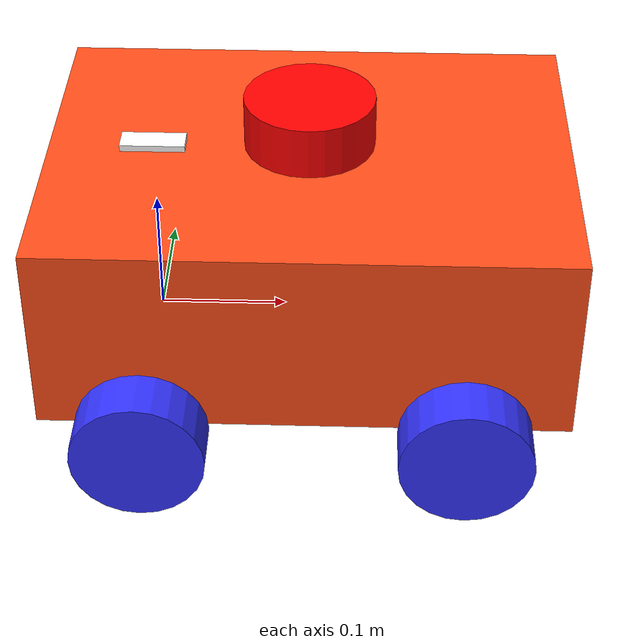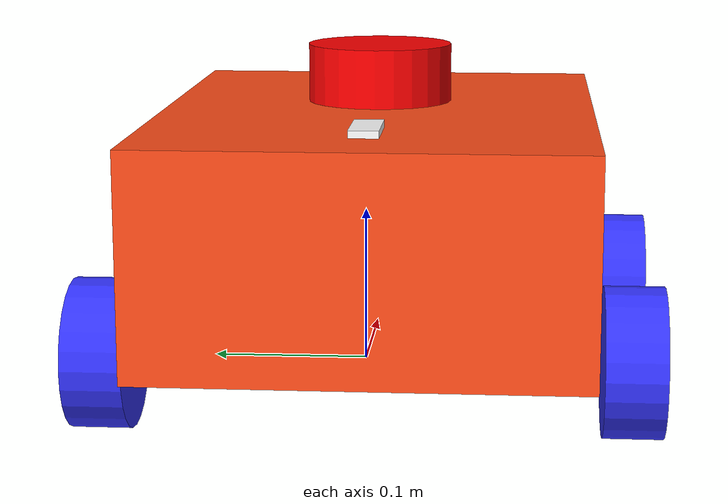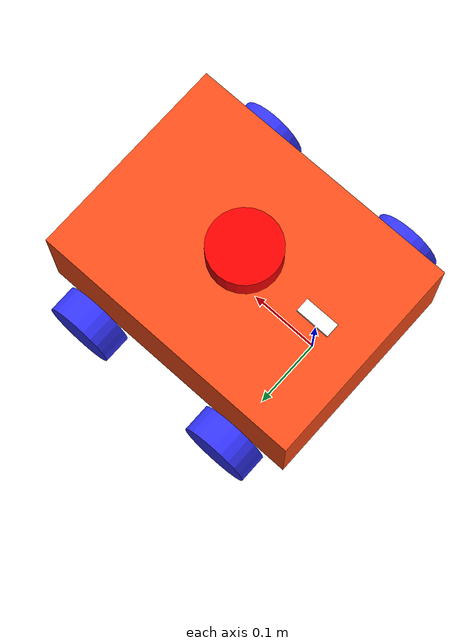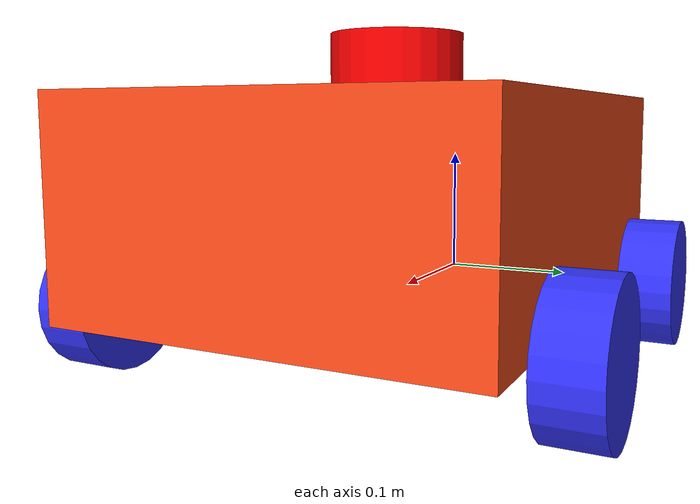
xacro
<?xml version="1.0"?>
<robot xmlns:xacro="http://www.ros.org/wiki/xacro"  name="asitlorbotsix">

    <xacro:arg name="is_sim" default="true"/>
    <!-- ROBOT DESCRIPTION - LINKS AND JOINTS -->
    <xacro:include filename="robot_core.xacro"/>
    <xacro:include filename="ros2_control.xacro"/>
    <xacro:include filename="lidar.xacro"/>
    <xacro:include filename="imu.xacro"/>

</robot>

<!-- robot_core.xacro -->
<robot xmlns:xacro="http://www.ros.org/wiki/xacro"  name="robot">

    <xacro:arg name="is_sim" default="true"/>

    <xacro:include filename="inertial_macros.xacro"/>

    <material name="white">
        <color rgba="1 1 1 1" />
    </material>

    <material name="orange">
        <color rgba="1 0.3 0.1 1"/>
    </material>

    <material name="blue">
        <color rgba="0.2 0.2 1 1"/>
    </material>

    <material name="black">
        <color rgba="0 0 0 1"/>
    </material>

    <material name="red">
        <color rgba="1 0 0 1"/>
    </material>

    <!-- BASE LINK -->

    <link name="base_link">

    </link>

    <!-- BASE_FOOTPRINT LINK -->

    <joint name="base_footprint_joint" type="fixed">
        <parent link="base_link"/>
        <child link="base_footprint"/>
        <origin xyz="0 0 0" rpy="0 0 0"/>
    </joint>

    <link name="base_footprint">
    </link>

    <!-- CHASSIS LINK -->

    <joint name="chassis_joint" type="fixed">
        <parent link="base_link"/>
        <child link="chassis"/>
        <origin xyz="-0.08 0 0"/>
    </joint>

    <link name="chassis">
        <visual>
            <origin xyz="0.2 0 0.075"/>
            <geometry>
                <box size="0.4 0.3 0.15"/>
            </geometry>
            <material name="orange"/>
        </visual>
        <!-- COLLISION TAG DEFINES VOLUME OF CERTAIN LINK -->
        <collision>
            <origin xyz="0.2 0 0.075"/>
            <geometry>
                <box size="0.4 0.3 0.15"/>
            </geometry>
        </collision>
        <!-- INERTIA TAG :RESISTANCE TO MOTION -->
        <xacro:inertial_box mass="0.5" x="0.4" y="0.3" z="0.15">
            <origin xyz="0.2 0 0.075" rpy="0 0 0"/>
        </xacro:inertial_box>
    </link>
    <gazebo reference="chassis">
        <material>Gazebo/Orange</material>
    </gazebo>

    <!-- LEFT BACK WHEEL LINK -->

    <joint name="left_back_wheel_hinge" type="continuous">
        <parent link="base_link"/>
        <child link="left_back_wheel"/>
        <origin xyz="0 0.175 0" rpy="-${pi/2} 0 0" />
        <axis xyz="0 0 1"/>
    </joint>

    <link name="left_back_wheel">
        <visual>
            <geometry>
                <cylinder radius="0.05" length="0.04"/>
            </geometry>
            <material name="blue"/>
        </visual>
        <collision>
            <geometry>
                <sphere radius="0.05"/>
            </geometry>
            <surface>
                <friction>
                    <fdir1>1 0 0</fdir1>
                    <!-- kp and kd for rubber -->
                    <slip1>0.0</slip1>
                    <slip2>0.0</slip2>
                </friction>
            </surface>
        </collision>
        <xacro:inertial_cylinder mass="0.2" length="0.04" radius="0.05">
            <origin xyz="0 0 0" rpy="0 0 0"/>
        </xacro:inertial_cylinder>

    </link>
    <gazebo reference="left_back_wheel">
        <material>Gazebo/Blue</material>
        <!-- kp and kd for rubber -->
        <mu1>1</mu1>
        <mu2>1</mu2>
        <maxVel>0.0</maxVel>
        <minDepth>0.00005</minDepth>
    </gazebo>

    <!-- LEFT FRONT WHEEL LINK -->

    <joint name="left_front_wheel_hinge" type="continuous">
        <parent link="base_link"/>
        <child link="left_front_wheel"/>
        <origin xyz="0.24 0.175 0" rpy="-${pi/2} 0 0" />
        <axis xyz="0 0 1"/>
    </joint>

    <link name="left_front_wheel">
        <visual>
            <geometry>
                <cylinder radius="0.05" length="0.04"/>
            </geometry>
            <material name="blue"/>
        </visual>
        <collision>
            <geometry>
                <sphere radius="0.05"/>
            </geometry>
            <surface>
                <friction>
                    <fdir1>1 0 0</fdir1>
                    <!-- kp and kd for rubber -->
                    <slip1>0.0</slip1>
                    <slip2>0.0</slip2>
                </friction>
            </surface>
        </collision>
        <xacro:inertial_cylinder mass="0.2" length="0.04" radius="0.05">
            <origin xyz="0 0 0" rpy="0 0 0"/>
        </xacro:inertial_cylinder>

    </link>
    <gazebo reference="left_front_wheel">
        <material>Gazebo/Blue</material>
        <!-- kp and kd for rubber -->
        <mu1>1</mu1>
        <mu2>1</mu2>
        <maxVel>0.0</maxVel>
        <minDepth>0.00005</minDepth>
    </gazebo>

    <!-- RIGHT BACK WHEEL -->

    <joint name="right_back_wheel_hinge" type="continuous">
        <parent link="base_link"/>
        <child link="right_back_wheel"/>
        <origin xyz="0 -0.175 0" rpy="${pi/2} 0 0" />
        <axis xyz="0 0 -1"/>
    </joint>

    <link name="right_back_wheel">
        <visual>
            <geometry>
                <cylinder radius="0.05" length="0.04"/>
            </geometry>
            <material name="blue"/>
        </visual>
        <collision>
            <geometry>
                <sphere radius="0.05"/>
            </geometry>
            <surface>
                <friction>
                    <fdir1>1 0 0</fdir1>
                    <!-- kp and kd for rubber -->
                    <slip1>0.0</slip1>
                    <slip2>0.0</slip2>
                </friction>
            </surface>
        </collision>
        <xacro:inertial_cylinder mass="0.2" length="0.04" radius="0.05">
            <origin xyz="0 0 0" rpy="0 0 0"/>
        </xacro:inertial_cylinder>
    </link>
    <gazebo reference="right_back_wheel">
        <material>Gazebo/Blue</material>
        <!-- kp and kd for rubber -->
        <mu1>1</mu1>
        <mu2>1</mu2>
        <maxVel>0.0</maxVel>
        <minDepth>0.00005</minDepth>
    </gazebo>

    <!-- RIGHT FRONT WHEEL -->

    <joint name="right_front_wheel_hinge" type="continuous">
        <parent link="base_link"/>
        <child link="right_front_wheel"/>
        <origin xyz="0.24 -0.175 0" rpy="${pi/2} 0 0" />
        <axis xyz="0 0 -1"/>
    </joint>

    <link name="right_front_wheel">
        <visual>
            <geometry>
                <cylinder radius="0.05" length="0.04"/>
            </geometry>
            <material name="blue"/>
        </visual>
        <collision>
            <geometry>
                <sphere radius="0.05"/>
            </geometry>
            <surface>
                <friction>
                    <fdir1>1 0 0</fdir1>
                    <!-- kp and kd for rubber -->
                    <slip1>0.0</slip1>
                    <slip2>0.0</slip2>
                </friction>
            </surface>
        </collision>
        <xacro:inertial_cylinder mass="0.2" length="0.04" radius="0.05">
            <origin xyz="0 0 0" rpy="0 0 0"/>
        </xacro:inertial_cylinder>
    </link>s
    <gazebo reference="right_front_wheel">
        <material>Gazebo/Blue</material>
        <!-- kp and kd for rubber -->
        <mu1>1</mu1>
        <mu2>1</mu2>
        <maxVel>0.0</maxVel>
        <minDepth>0.00005</minDepth>
    </gazebo>

</robot>

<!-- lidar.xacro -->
<robot xmlns:xacro="http://www.ros.org/wiki/xacro" >

    <joint name="laser_joint" type="fixed">
        <parent link="chassis"/>
        <child link="laser_frame"/>
        <origin xyz="0.2 0 0.175" rpy="0 0 0"/>
    </joint>

    <link name="laser_frame">
        <visual>
            <geometry>
                <cylinder radius="0.05" length="0.04"/>
            </geometry>
            <material name="red"/>
        </visual>
        <collision>
            <geometry>
                <cylinder radius="0.05" length="0.04"/>
            </geometry>
        </collision>
        <xacro:inertial_cylinder mass="0.1" length="0.04" radius="0.05">
            <origin xyz="0 0 0" rpy="0 0 0"/>
        </xacro:inertial_cylinder>
    </link>

    <gazebo reference="laser_frame">
        <material>Gazebo/Red</material>

        <sensor name="laser" type="ray">
            <pose> 0 0 0 0 0 0 </pose>
            <visualize>true</visualize>
            <update_rate>10</update_rate>
            <ray>
                <scan>
                    <horizontal>
                        <samples>360</samples>
                        <min_angle>-3.14</min_angle>
                        <max_angle>3.14</max_angle>
                    </horizontal>
                </scan>
                <range>
                    <min>0.3</min>
                    <max>6</max>
                </range>
                <noise>
                    <type>gaussian</type>
                    <mean>0.0</mean>
                    <stddev>0.01</stddev>
                </noise>
            </ray>
            <plugin name="laser_controller" filename="libgazebo_ros_ray_sensor.so">
                <ros>
                    <argument>--ros-args --remap ~/out:=scan</argument>
                </ros>
                <output_type>sensor_msgs/LaserScan</output_type>
                <frame_name>laser_frame</frame_name>
            </plugin>
        </sensor>
    </gazebo>

</robot>

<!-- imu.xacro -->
<robot xmlns:xacro="http://www.ros.org/wiki/xacro" >

    <!-- IMU LINK -->
    <joint name="imu_joint" type="fixed">
        <parent link="base_link"/>
        <child link="imu_link"/>
        <origin xyz="0 0 0.15"/>
    </joint>

    <link name="imu_link">
        <visual>
            <origin xyz="0 0 0"/>
            <geometry>
                <box size="0.05 0.02 0.01"/>
            </geometry>
            <material name="white"/>
        </visual>
        <!-- COLLISION TAG DEFINES VOLUME OF CERTAIN LINK -->
        <collision>
            <origin xyz="0 0 0"/>
            <geometry>
                <box size="0.01 0.02 0.05"/>
            </geometry>
        </collision>
        <!-- INERTIA TAG :RESISTANCE TO MOTION -->
        <xacro:inertial_box mass="0.05" x="0.05" y="0.02" z="0.01">
            <origin xyz="0 0 0" rpy="0 0 0"/>
        </xacro:inertial_box>
    </link>

    <gazebo reference="imu_link">
        <material>Gazebo/White</material>
        <gravity>true</gravity>
        <sensor name="imu" type="imu">
            <always_on>true</always_on>
            <update_rate>1.0</update_rate>
            <visualize>true</visualize>
            <imu>
                <angular_velocity>
                    <x>
                        <noise type="gaussian">
                            <mean>0.0</mean>
                            <stddev>2e-3</stddev>
                        </noise>
                    </x>
                    <y>
                        <noise type="gaussian">
                            <mean>0.0</mean>
                            <stddev>2e-3</stddev>
                        </noise>
                    </y>
                    <z>
                        <noise type="gaussian">
                            <mean>0.0</mean>
                            <stddev>2e-1</stddev>
                        </noise>
                    </z>
                </angular_velocity>
                <linear_acceleration>
                    <x>
                        <noise type="gaussian">
                            <mean>0.0</mean>
                            <stddev>1.7e-2</stddev>
                        </noise>
                    </x>
                    <y>
                        <noise type="gaussian">
                            <mean>0.0</mean>
                            <stddev>1.7e-2</stddev>
                        </noise>
                    </y>
                    <z>
                        <noise type="gaussian">
                            <mean>0.0</mean>
                            <stddev>1.7e-2</stddev>
                        </noise>
                    </z>
                </linear_acceleration>
            </imu>
            <plugin name="imu" filename="libgazebo_ros_imu_sensor.so">
                <xyzOffset>0 0 0</xyzOffset>
                <rpyOffset>0 0 0</rpyOffset>
            </plugin>
        </sensor>
    </gazebo>

</robot>
